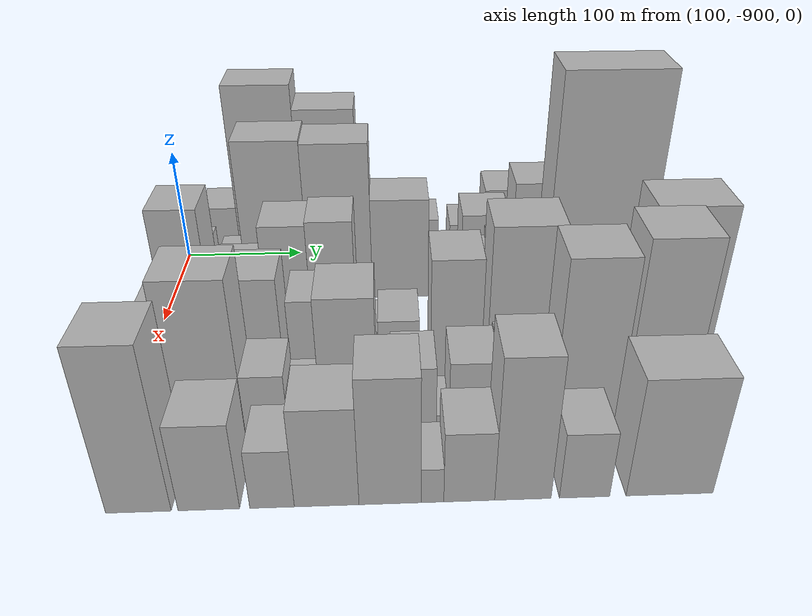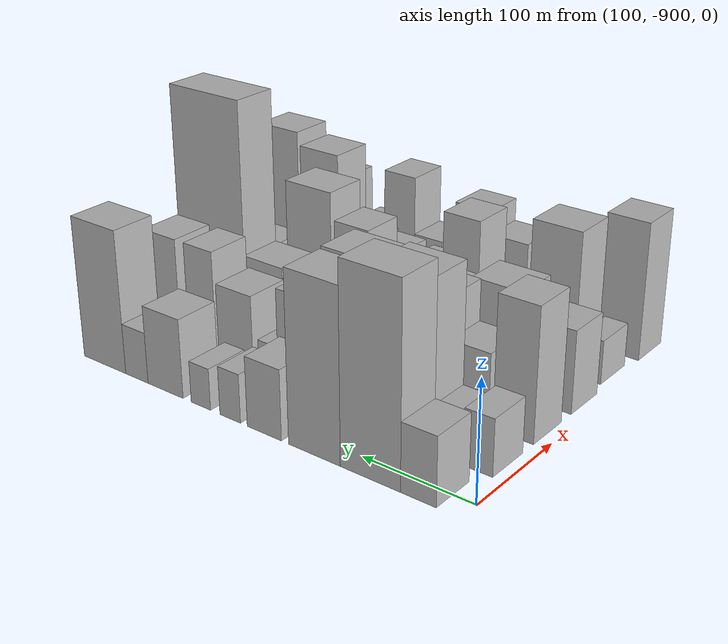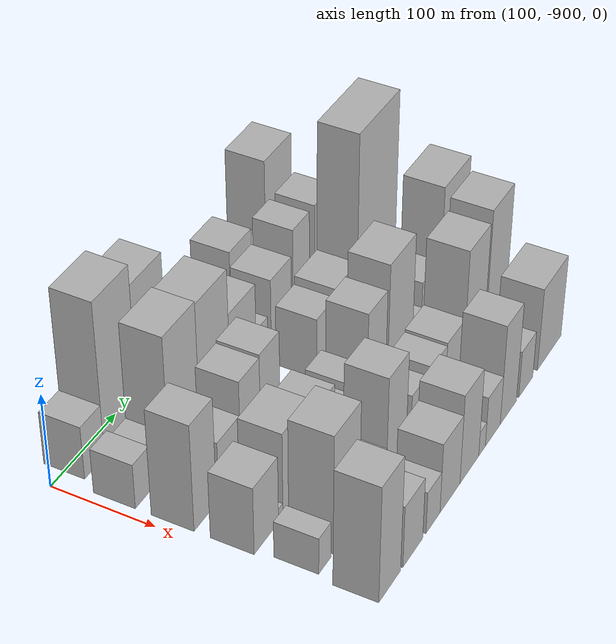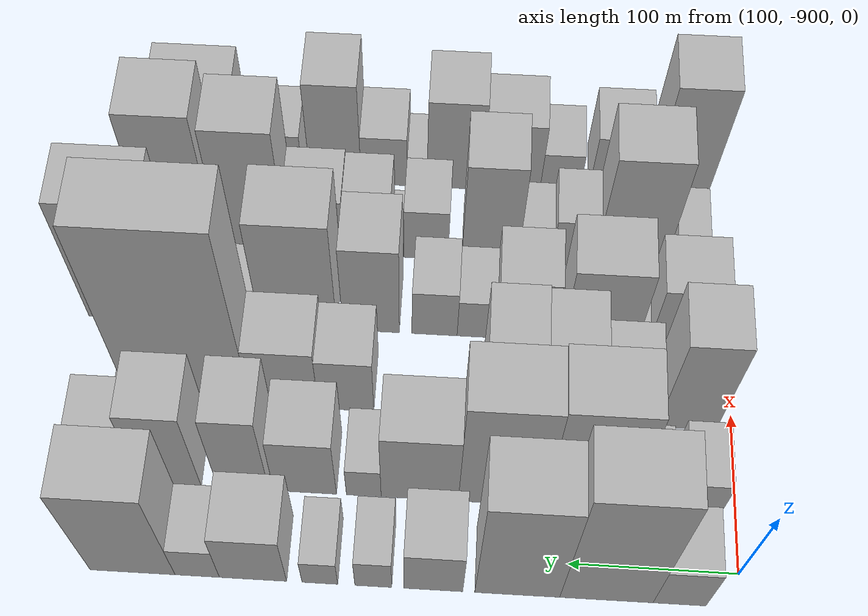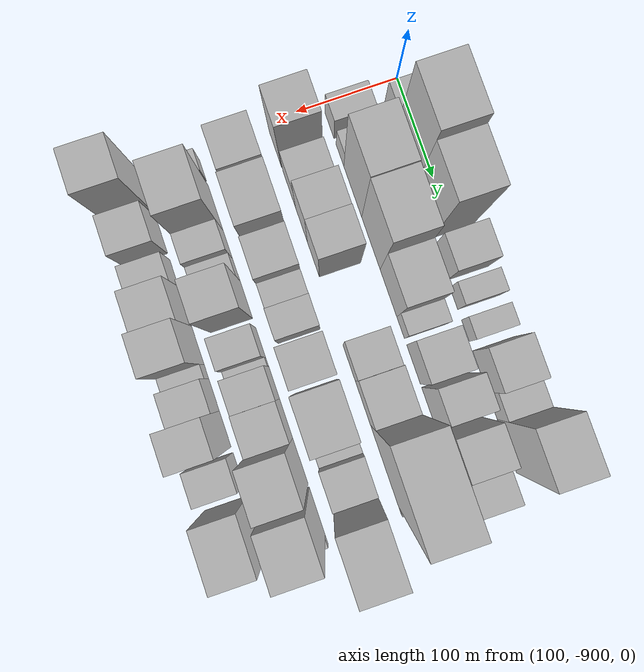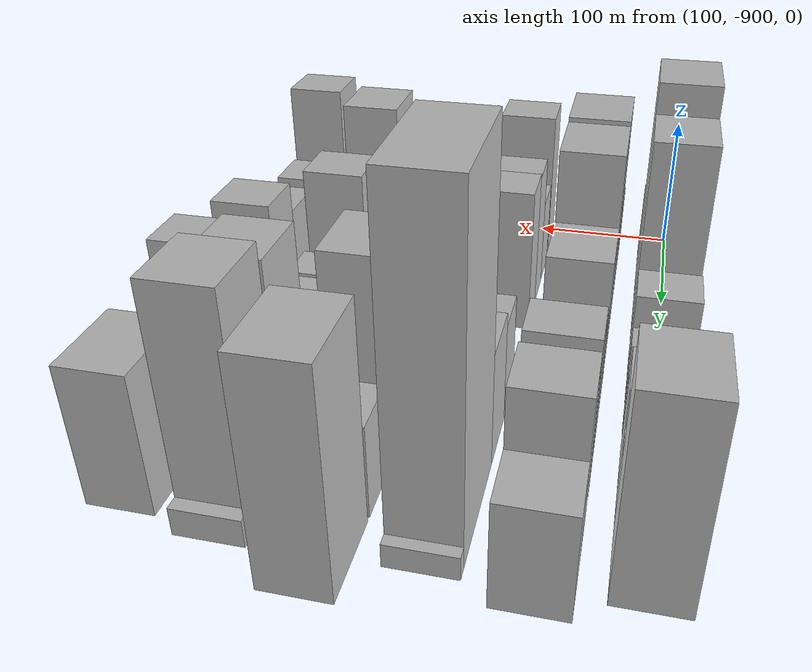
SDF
<sdf version="1.6">
 <world name="default">
  <model name="building_1">
   <static>1</static>
   <pose>100.0000 -864.7257 0 0.000000 0.000000 0.000000</pose>
   <link name="link">
    <pose>0 0 28.50 0 0 0</pose>
    <collision name="collision"><geometry><box><size>40.0000 30.5486 57.0000</size></box></geometry></collision>
    <visual name="visual">
     <cast_shadows>0</cast_shadows>
     <geometry><box><size>40.0000 30.5486 57.0000</size></box></geometry>
     <material>
      <script>
       <uri>model://HANNAS_wall/materials/scripts</uri>
       <uri>model://HANNAS_wall/materials/textures</uri>
       <name>vrc/HANNAS_wall</name>
      </script>
     </material>
    </visual>
   </link>
  </model>
  <model name="building_2">
   <static>1</static>
   <pose>100.0000 -822.4458 0 0.000000 0.000000 0.000000</pose>
   <link name="link">
    <pose>0 0 82.50 0 0 0</pose>
    <collision name="collision"><geometry><box><size>40.0000 54.0111 165.0000</size></box></geometry></collision>
    <visual name="visual">
     <cast_shadows>0</cast_shadows>
     <geometry><box><size>40.0000 54.0111 165.0000</size></box></geometry>
     <material>
      <script>
       <uri>model://HANNAS_wall/materials/scripts</uri>
       <uri>model://HANNAS_wall/materials/textures</uri>
       <name>vrc/HANNAS_wall</name>
      </script>
     </material>
    </visual>
   </link>
  </model>
  <model name="building_3">
   <static>1</static>
   <pose>100.0000 -770.7821 0 0.000000 0.000000 0.000000</pose>
   <link name="link">
    <pose>0 0 72.00 0 0 0</pose>
    <collision name="collision"><geometry><box><size>40.0000 49.3164 144.0000</size></box></geometry></collision>
    <visual name="visual">
     <cast_shadows>0</cast_shadows>
     <geometry><box><size>40.0000 49.3164 144.0000</size></box></geometry>
     <material>
      <script>
       <uri>model://HANNAS_wall/materials/scripts</uri>
       <uri>model://HANNAS_wall/materials/textures</uri>
       <name>vrc/HANNAS_wall</name>
      </script>
     </material>
    </visual>
   </link>
  </model>
  <model name="building_4">
   <static>1</static>
   <pose>100.0000 -721.9472 0 0.000000 0.000000 0.000000</pose>
   <link name="link">
    <pose>0 0 30.00 0 0 0</pose>
    <collision name="collision"><geometry><box><size>40.0000 34.3533 60.0000</size></box></geometry></collision>
    <visual name="visual">
     <cast_shadows>0</cast_shadows>
     <geometry><box><size>40.0000 34.3533 60.0000</size></box></geometry>
     <material>
      <script>
       <uri>model://HANNAS_wall/materials/scripts</uri>
       <uri>model://HANNAS_wall/materials/textures</uri>
       <name>vrc/HANNAS_wall</name>
      </script>
     </material>
    </visual>
   </link>
  </model>
  <model name="building_5">
   <static>1</static>
   <pose>100.0000 -687.0318 0 0.000000 0.000000 0.000000</pose>
   <link name="link">
    <pose>0 0 21.00 0 0 0</pose>
    <collision name="collision"><geometry><box><size>40.0000 21.4775 42.0000</size></box></geometry></collision>
    <visual name="visual">
     <cast_shadows>0</cast_shadows>
     <geometry><box><size>40.0000 21.4775 42.0000</size></box></geometry>
     <material>
      <script>
       <uri>model://HANNAS_wall/materials/scripts</uri>
       <uri>model://HANNAS_wall/materials/textures</uri>
       <name>vrc/HANNAS_wall</name>
      </script>
     </material>
    </visual>
   </link>
  </model>
  <model name="building_6">
   <static>1</static>
   <pose>100.0000 -655.8517 0 0.000000 0.000000 0.000000</pose>
   <link name="link">
    <pose>0 0 18.00 0 0 0</pose>
    <collision name="collision"><geometry><box><size>40.0000 20.8827 36.0000</size></box></geometry></collision>
    <visual name="visual">
     <cast_shadows>0</cast_shadows>
     <geometry><box><size>40.0000 20.8827 36.0000</size></box></geometry>
     <material>
      <script>
       <uri>model://HANNAS_wall/materials/scripts</uri>
       <uri>model://HANNAS_wall/materials/textures</uri>
       <name>vrc/HANNAS_wall</name>
      </script>
     </material>
    </visual>
   </link>
  </model>
  <model name="building_7">
   <static>1</static>
   <pose>100.0000 -616.6868 0 0.000000 0.000000 0.000000</pose>
   <link name="link">
    <pose>0 0 34.50 0 0 0</pose>
    <collision name="collision"><geometry><box><size>40.0000 39.4469 69.0000</size></box></geometry></collision>
    <visual name="visual">
     <cast_shadows>0</cast_shadows>
     <geometry><box><size>40.0000 39.4469 69.0000</size></box></geometry>
     <material>
      <script>
       <uri>model://HANNAS_wall/materials/scripts</uri>
       <uri>model://HANNAS_wall/materials/textures</uri>
       <name>vrc/HANNAS_wall</name>
      </script>
     </material>
    </visual>
   </link>
  </model>
  <model name="building_8">
   <static>1</static>
   <pose>100.0000 -583.9512 0 0.000000 0.000000 0.000000</pose>
   <link name="link">
    <pose>0 0 22.50 0 0 0</pose>
    <collision name="collision"><geometry><box><size>40.0000 26.0243 45.0000</size></box></geometry></collision>
    <visual name="visual">
     <cast_shadows>0</cast_shadows>
     <geometry><box><size>40.0000 26.0243 45.0000</size></box></geometry>
     <material>
      <script>
       <uri>model://HANNAS_wall/materials/scripts</uri>
       <uri>model://HANNAS_wall/materials/textures</uri>
       <name>vrc/HANNAS_wall</name>
      </script>
     </material>
    </visual>
   </link>
  </model>
  <model name="building_9">
   <static>1</static>
   <pose>100.0000 -545.9353 0 0.000000 0.000000 0.000000</pose>
   <link name="link">
    <pose>0 0 63.00 0 0 0</pose>
    <collision name="collision"><geometry><box><size>40.0000 50.0075 126.0000</size></box></geometry></collision>
    <visual name="visual">
     <cast_shadows>0</cast_shadows>
     <geometry><box><size>40.0000 50.0075 126.0000</size></box></geometry>
     <material>
      <script>
       <uri>model://HANNAS_wall/materials/scripts</uri>
       <uri>model://HANNAS_wall/materials/textures</uri>
       <name>vrc/HANNAS_wall</name>
      </script>
     </material>
    </visual>
   </link>
  </model>
  <model name="building_52">
   <static>1</static>
   <pose>155.0000 -877.2453 0 0.000000 0.000000 0.000000</pose>
   <link name="link">
    <pose>0 0 24.00 0 0 0</pose>
    <collision name="collision"><geometry><box><size>40.0000 25.5093 48.0000</size></box></geometry></collision>
    <visual name="visual">
     <cast_shadows>0</cast_shadows>
     <geometry><box><size>40.0000 25.5093 48.0000</size></box></geometry>
     <material>
      <script>
       <uri>model://HANNAS_wall/materials/scripts</uri>
       <uri>model://HANNAS_wall/materials/textures</uri>
       <name>vrc/HANNAS_wall</name>
      </script>
     </material>
    </visual>
   </link>
  </model>
  <model name="building_53">
   <static>1</static>
   <pose>155.0000 -847.4189 0 0.000000 0.000000 0.000000</pose>
   <link name="link">
    <pose>0 0 19.50 0 0 0</pose>
    <collision name="collision"><geometry><box><size>40.0000 22.1435 39.0000</size></box></geometry></collision>
    <visual name="visual">
     <cast_shadows>0</cast_shadows>
     <geometry><box><size>40.0000 22.1435 39.0000</size></box></geometry>
     <material>
      <script>
       <uri>model://HANNAS_wall/materials/scripts</uri>
       <uri>model://HANNAS_wall/materials/textures</uri>
       <name>vrc/HANNAS_wall</name>
      </script>
     </material>
    </visual>
   </link>
  </model>
  <model name="building_54">
   <static>1</static>
   <pose>155.0000 -811.0067 0 0.000000 0.000000 0.000000</pose>
   <link name="link">
    <pose>0 0 70.50 0 0 0</pose>
    <collision name="collision"><geometry><box><size>40.0000 50.6810 141.0000</size></box></geometry></collision>
    <visual name="visual">
     <cast_shadows>0</cast_shadows>
     <geometry><box><size>40.0000 50.6810 141.0000</size></box></geometry>
     <material>
      <script>
       <uri>model://HANNAS_wall/materials/scripts</uri>
       <uri>model://HANNAS_wall/materials/textures</uri>
       <name>vrc/HANNAS_wall</name>
      </script>
     </material>
    </visual>
   </link>
  </model>
  <model name="building_55">
   <static>1</static>
   <pose>155.0000 -759.9130 0 0.000000 0.000000 0.000000</pose>
   <link name="link">
    <pose>0 0 69.00 0 0 0</pose>
    <collision name="collision"><geometry><box><size>40.0000 51.5064 138.0000</size></box></geometry></collision>
    <visual name="visual">
     <cast_shadows>0</cast_shadows>
     <geometry><box><size>40.0000 51.5064 138.0000</size></box></geometry>
     <material>
      <script>
       <uri>model://HANNAS_wall/materials/scripts</uri>
       <uri>model://HANNAS_wall/materials/textures</uri>
       <name>vrc/HANNAS_wall</name>
      </script>
     </material>
    </visual>
   </link>
  </model>
  <model name="building_56">
   <static>1</static>
   <pose>155.0000 -711.0327 0 0.000000 0.000000 0.000000</pose>
   <link name="link">
    <pose>0 0 45.00 0 0 0</pose>
    <collision name="collision"><geometry><box><size>40.0000 46.2541 90.0000</size></box></geometry></collision>
    <visual name="visual">
     <cast_shadows>0</cast_shadows>
     <geometry><box><size>40.0000 46.2541 90.0000</size></box></geometry>
     <material>
      <script>
       <uri>model://HANNAS_wall/materials/scripts</uri>
       <uri>model://HANNAS_wall/materials/textures</uri>
       <name>vrc/HANNAS_wall</name>
      </script>
     </material>
    </visual>
   </link>
  </model>
  <model name="building_57">
   <static>1</static>
   <pose>155.0000 -677.4750 0 0.000000 0.000000 0.000000</pose>
   <link name="link">
    <pose>0 0 19.50 0 0 0</pose>
    <collision name="collision"><geometry><box><size>40.0000 20.8614 39.0000</size></box></geometry></collision>
    <visual name="visual">
     <cast_shadows>0</cast_shadows>
     <geometry><box><size>40.0000 20.8614 39.0000</size></box></geometry>
     <material>
      <script>
       <uri>model://HANNAS_wall/materials/scripts</uri>
       <uri>model://HANNAS_wall/materials/textures</uri>
       <name>vrc/HANNAS_wall</name>
      </script>
     </material>
    </visual>
   </link>
  </model>
  <model name="building_58">
   <static>1</static>
   <pose>155.0000 -642.1965 0 0.000000 0.000000 0.000000</pose>
   <link name="link">
    <pose>0 0 37.50 0 0 0</pose>
    <collision name="collision"><geometry><box><size>40.0000 37.6956 75.0000</size></box></geometry></collision>
    <visual name="visual">
     <cast_shadows>0</cast_shadows>
     <geometry><box><size>40.0000 37.6956 75.0000</size></box></geometry>
     <material>
      <script>
       <uri>model://HANNAS_wall/materials/scripts</uri>
       <uri>model://HANNAS_wall/materials/textures</uri>
       <name>vrc/HANNAS_wall</name>
      </script>
     </material>
    </visual>
   </link>
  </model>
  <model name="building_59">
   <static>1</static>
   <pose>155.0000 -604.8705 0 0.000000 0.000000 0.000000</pose>
   <link name="link">
    <pose>0 0 51.00 0 0 0</pose>
    <collision name="collision"><geometry><box><size>40.0000 30.9563 102.0000</size></box></geometry></collision>
    <visual name="visual">
     <cast_shadows>0</cast_shadows>
     <geometry><box><size>40.0000 30.9563 102.0000</size></box></geometry>
     <material>
      <script>
       <uri>model://HANNAS_wall/materials/scripts</uri>
       <uri>model://HANNAS_wall/materials/textures</uri>
       <name>vrc/HANNAS_wall</name>
      </script>
     </material>
    </visual>
   </link>
  </model>
  <model name="building_60">
   <static>1</static>
   <pose>155.0000 -561.1471 0 0.000000 0.000000 0.000000</pose>
   <link name="link">
    <pose>0 0 51.00 0 0 0</pose>
    <collision name="collision"><geometry><box><size>40.0000 36.4905 102.0000</size></box></geometry></collision>
    <visual name="visual">
     <cast_shadows>0</cast_shadows>
     <geometry><box><size>40.0000 36.4905 102.0000</size></box></geometry>
     <material>
      <script>
       <uri>model://HANNAS_wall/materials/scripts</uri>
       <uri>model://HANNAS_wall/materials/textures</uri>
       <name>vrc/HANNAS_wall</name>
      </script>
     </material>
    </visual>
   </link>
  </model>
  <model name="building_61">
   <static>1</static>
   <pose>155.0000 -525.0356 0 0.000000 0.000000 0.000000</pose>
   <link name="link">
    <pose>0 0 33.00 0 0 0</pose>
    <collision name="collision"><geometry><box><size>40.0000 35.7326 66.0000</size></box></geometry></collision>
    <visual name="visual">
     <cast_shadows>0</cast_shadows>
     <geometry><box><size>40.0000 35.7326 66.0000</size></box></geometry>
     <material>
      <script>
       <uri>model://HANNAS_wall/materials/scripts</uri>
       <uri>model://HANNAS_wall/materials/textures</uri>
       <name>vrc/HANNAS_wall</name>
      </script>
     </material>
    </visual>
   </link>
  </model>
  <model name="building_102">
   <static>1</static>
   <pose>210.0000 -872.0257 0 0.000000 0.000000 0.000000</pose>
   <link name="link">
    <pose>0 0 57.00 0 0 0</pose>
    <collision name="collision"><geometry><box><size>40.0000 35.9486 114.0000</size></box></geometry></collision>
    <visual name="visual">
     <cast_shadows>0</cast_shadows>
     <geometry><box><size>40.0000 35.9486 114.0000</size></box></geometry>
     <material>
      <script>
       <uri>model://HANNAS_wall/materials/scripts</uri>
       <uri>model://HANNAS_wall/materials/textures</uri>
       <name>vrc/HANNAS_wall</name>
      </script>
     </material>
    </visual>
   </link>
  </model>
  <model name="building_103">
   <static>1</static>
   <pose>210.0000 -831.6804 0 0.000000 0.000000 0.000000</pose>
   <link name="link">
    <pose>0 0 31.50 0 0 0</pose>
    <collision name="collision"><geometry><box><size>40.0000 36.7421 63.0000</size></box></geometry></collision>
    <visual name="visual">
     <cast_shadows>0</cast_shadows>
     <geometry><box><size>40.0000 36.7421 63.0000</size></box></geometry>
     <material>
      <script>
       <uri>model://HANNAS_wall/materials/scripts</uri>
       <uri>model://HANNAS_wall/materials/textures</uri>
       <name>vrc/HANNAS_wall</name>
      </script>
     </material>
    </visual>
   </link>
  </model>
  <model name="building_104">
   <static>1</static>
   <pose>210.0000 -796.4496 0 0.000000 0.000000 0.000000</pose>
   <link name="link">
    <pose>0 0 49.50 0 0 0</pose>
    <collision name="collision"><geometry><box><size>40.0000 33.7194 99.0000</size></box></geometry></collision>
    <visual name="visual">
     <cast_shadows>0</cast_shadows>
     <geometry><box><size>40.0000 33.7194 99.0000</size></box></geometry>
     <material>
      <script>
       <uri>model://HANNAS_wall/materials/scripts</uri>
       <uri>model://HANNAS_wall/materials/textures</uri>
       <name>vrc/HANNAS_wall</name>
      </script>
     </material>
    </visual>
   </link>
  </model>
  <model name="building_105">
   <static>1</static>
   <pose>210.0000 -762.6803 0 0.000000 0.000000 0.000000</pose>
   <link name="link">
    <pose>0 0 51.00 0 0 0</pose>
    <collision name="collision"><geometry><box><size>40.0000 33.8191 102.0000</size></box></geometry></collision>
    <visual name="visual">
     <cast_shadows>0</cast_shadows>
     <geometry><box><size>40.0000 33.8191 102.0000</size></box></geometry>
     <material>
      <script>
       <uri>model://HANNAS_wall/materials/scripts</uri>
       <uri>model://HANNAS_wall/materials/textures</uri>
       <name>vrc/HANNAS_wall</name>
      </script>
     </material>
    </visual>
   </link>
  </model>
  <model name="building_106">
   <static>1</static>
   <pose>210.0000 -662.5745 0 0.000000 0.000000 0.000000</pose>
   <link name="link">
    <pose>0 0 33.00 0 0 0</pose>
    <collision name="collision"><geometry><box><size>40.0000 34.1308 66.0000</size></box></geometry></collision>
    <visual name="visual">
     <cast_shadows>0</cast_shadows>
     <geometry><box><size>40.0000 34.1308 66.0000</size></box></geometry>
     <material>
      <script>
       <uri>model://HANNAS_wall/materials/scripts</uri>
       <uri>model://HANNAS_wall/materials/textures</uri>
       <name>vrc/HANNAS_wall</name>
      </script>
     </material>
    </visual>
   </link>
  </model>
  <model name="building_107">
   <static>1</static>
   <pose>210.0000 -624.4218 0 0.000000 0.000000 0.000000</pose>
   <link name="link">
    <pose>0 0 37.50 0 0 0</pose>
    <collision name="collision"><geometry><box><size>40.0000 42.1746 75.0000</size></box></geometry></collision>
    <visual name="visual">
     <cast_shadows>0</cast_shadows>
     <geometry><box><size>40.0000 42.1746 75.0000</size></box></geometry>
     <material>
      <script>
       <uri>model://HANNAS_wall/materials/scripts</uri>
       <uri>model://HANNAS_wall/materials/textures</uri>
       <name>vrc/HANNAS_wall</name>
      </script>
     </material>
    </visual>
   </link>
  </model>
  <model name="building_108">
   <static>1</static>
   <pose>210.0000 -565.2541 0 0.000000 0.000000 0.000000</pose>
   <link name="link">
    <pose>0 0 105.00 0 0 0</pose>
    <collision name="collision"><geometry><box><size>40.0000 76.1609 210.0000</size></box></geometry></collision>
    <visual name="visual">
     <cast_shadows>0</cast_shadows>
     <geometry><box><size>40.0000 76.1609 210.0000</size></box></geometry>
     <material>
      <script>
       <uri>model://HANNAS_wall/materials/scripts</uri>
       <uri>model://HANNAS_wall/materials/textures</uri>
       <name>vrc/HANNAS_wall</name>
      </script>
     </material>
    </visual>
   </link>
  </model>
  <model name="building_109">
   <static>1</static>
   <pose>210.0000 -523.6101 0 0.000000 0.000000 0.000000</pose>
   <link name="link">
    <pose>0 0 7.50 0 0 0</pose>
    <collision name="collision"><geometry><box><size>40.0000 7.1270 15.0000</size></box></geometry></collision>
    <visual name="visual">
     <cast_shadows>0</cast_shadows>
     <geometry><box><size>40.0000 7.1270 15.0000</size></box></geometry>
     <material>
      <script>
       <uri>model://HANNAS_wall/materials/scripts</uri>
       <uri>model://HANNAS_wall/materials/textures</uri>
       <name>vrc/HANNAS_wall</name>
      </script>
     </material>
    </visual>
   </link>
  </model>
  <model name="building_154">
   <static>1</static>
   <pose>265.0000 -869.8966 0 0.000000 0.000000 0.000000</pose>
   <link name="link">
    <pose>0 0 36.00 0 0 0</pose>
    <collision name="collision"><geometry><box><size>40.0000 40.2068 72.0000</size></box></geometry></collision>
    <visual name="visual">
     <cast_shadows>0</cast_shadows>
     <geometry><box><size>40.0000 40.2068 72.0000</size></box></geometry>
     <material>
      <script>
       <uri>model://HANNAS_wall/materials/scripts</uri>
       <uri>model://HANNAS_wall/materials/textures</uri>
       <name>vrc/HANNAS_wall</name>
      </script>
     </material>
    </visual>
   </link>
  </model>
  <model name="building_155">
   <static>1</static>
   <pose>265.0000 -846.0512 0 0.000000 0.000000 0.000000</pose>
   <link name="link">
    <pose>0 0 7.50 0 0 0</pose>
    <collision name="collision"><geometry><box><size>40.0000 7.4838 15.0000</size></box></geometry></collision>
    <visual name="visual">
     <cast_shadows>0</cast_shadows>
     <geometry><box><size>40.0000 7.4838 15.0000</size></box></geometry>
     <material>
      <script>
       <uri>model://HANNAS_wall/materials/scripts</uri>
       <uri>model://HANNAS_wall/materials/textures</uri>
       <name>vrc/HANNAS_wall</name>
      </script>
     </material>
    </visual>
   </link>
  </model>
  <model name="building_156">
   <static>1</static>
   <pose>265.0000 -818.6921 0 0.000000 0.000000 0.000000</pose>
   <link name="link">
    <pose>0 0 45.00 0 0 0</pose>
    <collision name="collision"><geometry><box><size>40.0000 47.2345 90.0000</size></box></geometry></collision>
    <visual name="visual">
     <cast_shadows>0</cast_shadows>
     <geometry><box><size>40.0000 47.2345 90.0000</size></box></geometry>
     <material>
      <script>
       <uri>model://HANNAS_wall/materials/scripts</uri>
       <uri>model://HANNAS_wall/materials/textures</uri>
       <name>vrc/HANNAS_wall</name>
      </script>
     </material>
    </visual>
   </link>
  </model>
  <model name="building_157">
   <static>1</static>
   <pose>265.0000 -771.1643 0 0.000000 0.000000 0.000000</pose>
   <link name="link">
    <pose>0 0 36.00 0 0 0</pose>
    <collision name="collision"><geometry><box><size>40.0000 37.8212 72.0000</size></box></geometry></collision>
    <visual name="visual">
     <cast_shadows>0</cast_shadows>
     <geometry><box><size>40.0000 37.8212 72.0000</size></box></geometry>
     <material>
      <script>
       <uri>model://HANNAS_wall/materials/scripts</uri>
       <uri>model://HANNAS_wall/materials/textures</uri>
       <name>vrc/HANNAS_wall</name>
      </script>
     </material>
    </visual>
   </link>
  </model>
  <model name="building_158">
   <static>1</static>
   <pose>265.0000 -740.4808 0 0.000000 0.000000 0.000000</pose>
   <link name="link">
    <pose>0 0 22.50 0 0 0</pose>
    <collision name="collision"><geometry><box><size>40.0000 23.5458 45.0000</size></box></geometry></collision>
    <visual name="visual">
     <cast_shadows>0</cast_shadows>
     <geometry><box><size>40.0000 23.5458 45.0000</size></box></geometry>
     <material>
      <script>
       <uri>model://HANNAS_wall/materials/scripts</uri>
       <uri>model://HANNAS_wall/materials/textures</uri>
       <name>vrc/HANNAS_wall</name>
      </script>
     </material>
    </visual>
   </link>
  </model>
  <model name="building_159">
   <static>1</static>
   <pose>265.0000 -714.3545 0 0.000000 0.000000 0.000000</pose>
   <link name="link">
    <pose>0 0 27.00 0 0 0</pose>
    <collision name="collision"><geometry><box><size>40.0000 28.7067 54.0000</size></box></geometry></collision>
    <visual name="visual">
     <cast_shadows>0</cast_shadows>
     <geometry><box><size>40.0000 28.7067 54.0000</size></box></geometry>
     <material>
      <script>
       <uri>model://HANNAS_wall/materials/scripts</uri>
       <uri>model://HANNAS_wall/materials/textures</uri>
       <name>vrc/HANNAS_wall</name>
      </script>
     </material>
    </visual>
   </link>
  </model>
  <model name="building_160">
   <static>1</static>
   <pose>265.0000 -674.1225 0 0.000000 0.000000 0.000000</pose>
   <link name="link">
    <pose>0 0 51.00 0 0 0</pose>
    <collision name="collision"><geometry><box><size>40.0000 35.7574 102.0000</size></box></geometry></collision>
    <visual name="visual">
     <cast_shadows>0</cast_shadows>
     <geometry><box><size>40.0000 35.7574 102.0000</size></box></geometry>
     <material>
      <script>
       <uri>model://HANNAS_wall/materials/scripts</uri>
       <uri>model://HANNAS_wall/materials/textures</uri>
       <name>vrc/HANNAS_wall</name>
      </script>
     </material>
    </visual>
   </link>
  </model>
  <model name="building_161">
   <static>1</static>
   <pose>265.0000 -627.6729 0 0.000000 0.000000 0.000000</pose>
   <link name="link">
    <pose>0 0 63.00 0 0 0</pose>
    <collision name="collision"><geometry><box><size>40.0000 49.1418 126.0000</size></box></geometry></collision>
    <visual name="visual">
     <cast_shadows>0</cast_shadows>
     <geometry><box><size>40.0000 49.1418 126.0000</size></box></geometry>
     <material>
      <script>
       <uri>model://HANNAS_wall/materials/scripts</uri>
       <uri>model://HANNAS_wall/materials/textures</uri>
       <name>vrc/HANNAS_wall</name>
      </script>
     </material>
    </visual>
   </link>
  </model>
  <model name="building_162">
   <static>1</static>
   <pose>265.0000 -594.2826 0 0.000000 0.000000 0.000000</pose>
   <link name="link">
    <pose>0 0 16.50 0 0 0</pose>
    <collision name="collision"><geometry><box><size>40.0000 17.6388 33.0000</size></box></geometry></collision>
    <visual name="visual">
     <cast_shadows>0</cast_shadows>
     <geometry><box><size>40.0000 17.6388 33.0000</size></box></geometry>
     <material>
      <script>
       <uri>model://HANNAS_wall/materials/scripts</uri>
       <uri>model://HANNAS_wall/materials/textures</uri>
       <name>vrc/HANNAS_wall</name>
      </script>
     </material>
    </visual>
   </link>
  </model>
  <model name="building_163">
   <static>1</static>
   <pose>265.0000 -567.7418 0 0.000000 0.000000 0.000000</pose>
   <link name="link">
    <pose>0 0 30.00 0 0 0</pose>
    <collision name="collision"><geometry><box><size>40.0000 35.4427 60.0000</size></box></geometry></collision>
    <visual name="visual">
     <cast_shadows>0</cast_shadows>
     <geometry><box><size>40.0000 35.4427 60.0000</size></box></geometry>
     <material>
      <script>
       <uri>model://HANNAS_wall/materials/scripts</uri>
       <uri>model://HANNAS_wall/materials/textures</uri>
       <name>vrc/HANNAS_wall</name>
      </script>
     </material>
    </visual>
   </link>
  </model>
  <model name="building_164">
   <static>1</static>
   <pose>265.0000 -520.1163 0 0.000000 0.000000 0.000000</pose>
   <link name="link">
    <pose>0 0 69.00 0 0 0</pose>
    <collision name="collision"><geometry><box><size>40.0000 53.8084 138.0000</size></box></geometry></collision>
    <visual name="visual">
     <cast_shadows>0</cast_shadows>
     <geometry><box><size>40.0000 53.8084 138.0000</size></box></geometry>
     <material>
      <script>
       <uri>model://HANNAS_wall/materials/scripts</uri>
       <uri>model://HANNAS_wall/materials/textures</uri>
       <name>vrc/HANNAS_wall</name>
      </script>
     </material>
    </visual>
   </link>
  </model>
  <model name="building_201">
   <static>1</static>
   <pose>320.0000 -874.5870 0 0.000000 0.000000 0.000000</pose>
   <link name="link">
    <pose>0 0 19.50 0 0 0</pose>
    <collision name="collision"><geometry><box><size>40.0000 20.8260 39.0000</size></box></geometry></collision>
    <visual name="visual">
     <cast_shadows>0</cast_shadows>
     <geometry><box><size>40.0000 20.8260 39.0000</size></box></geometry>
     <material>
      <script>
       <uri>model://HANNAS_wall/materials/scripts</uri>
       <uri>model://HANNAS_wall/materials/textures</uri>
       <name>vrc/HANNAS_wall</name>
      </script>
     </material>
    </visual>
   </link>
  </model>
  <model name="building_202">
   <static>1</static>
   <pose>320.0000 -837.5990 0 0.000000 0.000000 0.000000</pose>
   <link name="link">
    <pose>0 0 63.00 0 0 0</pose>
    <collision name="collision"><geometry><box><size>40.0000 45.1499 126.0000</size></box></geometry></collision>
    <visual name="visual">
     <cast_shadows>0</cast_shadows>
     <geometry><box><size>40.0000 45.1499 126.0000</size></box></geometry>
     <material>
      <script>
       <uri>model://HANNAS_wall/materials/scripts</uri>
       <uri>model://HANNAS_wall/materials/textures</uri>
       <name>vrc/HANNAS_wall</name>
      </script>
     </material>
    </visual>
   </link>
  </model>
  <model name="building_203">
   <static>1</static>
   <pose>320.0000 -801.2038 0 0.000000 0.000000 0.000000</pose>
   <link name="link">
    <pose>0 0 27.00 0 0 0</pose>
    <collision name="collision"><geometry><box><size>40.0000 27.6406 54.0000</size></box></geometry></collision>
    <visual name="visual">
     <cast_shadows>0</cast_shadows>
     <geometry><box><size>40.0000 27.6406 54.0000</size></box></geometry>
     <material>
      <script>
       <uri>model://HANNAS_wall/materials/scripts</uri>
       <uri>model://HANNAS_wall/materials/textures</uri>
       <name>vrc/HANNAS_wall</name>
      </script>
     </material>
    </visual>
   </link>
  </model>
  <model name="building_204">
   <static>1</static>
   <pose>320.0000 -776.6204 0 0.000000 0.000000 0.000000</pose>
   <link name="link">
    <pose>0 0 18.00 0 0 0</pose>
    <collision name="collision"><geometry><box><size>40.0000 21.5260 36.0000</size></box></geometry></collision>
    <visual name="visual">
     <cast_shadows>0</cast_shadows>
     <geometry><box><size>40.0000 21.5260 36.0000</size></box></geometry>
     <material>
      <script>
       <uri>model://HANNAS_wall/materials/scripts</uri>
       <uri>model://HANNAS_wall/materials/textures</uri>
       <name>vrc/HANNAS_wall</name>
      </script>
     </material>
    </visual>
   </link>
  </model>
  <model name="building_205">
   <static>1</static>
   <pose>320.0000 -747.6105 0 0.000000 0.000000 0.000000</pose>
   <link name="link">
    <pose>0 0 55.50 0 0 0</pose>
    <collision name="collision"><geometry><box><size>40.0000 36.4938 111.0000</size></box></geometry></collision>
    <visual name="visual">
     <cast_shadows>0</cast_shadows>
     <geometry><box><size>40.0000 36.4938 111.0000</size></box></geometry>
     <material>
      <script>
       <uri>model://HANNAS_wall/materials/scripts</uri>
       <uri>model://HANNAS_wall/materials/textures</uri>
       <name>vrc/HANNAS_wall</name>
      </script>
     </material>
    </visual>
   </link>
  </model>
  <model name="building_206">
   <static>1</static>
   <pose>320.0000 -705.8832 0 0.000000 0.000000 0.000000</pose>
   <link name="link">
    <pose>0 0 28.50 0 0 0</pose>
    <collision name="collision"><geometry><box><size>40.0000 28.9608 57.0000</size></box></geometry></collision>
    <visual name="visual">
     <cast_shadows>0</cast_shadows>
     <geometry><box><size>40.0000 28.9608 57.0000</size></box></geometry>
     <material>
      <script>
       <uri>model://HANNAS_wall/materials/scripts</uri>
       <uri>model://HANNAS_wall/materials/textures</uri>
       <name>vrc/HANNAS_wall</name>
      </script>
     </material>
    </visual>
   </link>
  </model>
  <model name="building_207">
   <static>1</static>
   <pose>320.0000 -687.2575 0 0.000000 0.000000 0.000000</pose>
   <link name="link">
    <pose>0 0 9.00 0 0 0</pose>
    <collision name="collision"><geometry><box><size>40.0000 8.2906 18.0000</size></box></geometry></collision>
    <visual name="visual">
     <cast_shadows>0</cast_shadows>
     <geometry><box><size>40.0000 8.2906 18.0000</size></box></geometry>
     <material>
      <script>
       <uri>model://HANNAS_wall/materials/scripts</uri>
       <uri>model://HANNAS_wall/materials/textures</uri>
       <name>vrc/HANNAS_wall</name>
      </script>
     </material>
    </visual>
   </link>
  </model>
  <model name="building_208">
   <static>1</static>
   <pose>320.0000 -667.7452 0 0.000000 0.000000 0.000000</pose>
   <link name="link">
    <pose>0 0 30.00 0 0 0</pose>
    <collision name="collision"><geometry><box><size>40.0000 30.7339 60.0000</size></box></geometry></collision>
    <visual name="visual">
     <cast_shadows>0</cast_shadows>
     <geometry><box><size>40.0000 30.7339 60.0000</size></box></geometry>
     <material>
      <script>
       <uri>model://HANNAS_wall/materials/scripts</uri>
       <uri>model://HANNAS_wall/materials/textures</uri>
       <name>vrc/HANNAS_wall</name>
      </script>
     </material>
    </visual>
   </link>
  </model>
  <model name="building_209">
   <static>1</static>
   <pose>320.0000 -633.8303 0 0.000000 0.000000 0.000000</pose>
   <link name="link">
    <pose>0 0 31.50 0 0 0</pose>
    <collision name="collision"><geometry><box><size>40.0000 37.0960 63.0000</size></box></geometry></collision>
    <visual name="visual">
     <cast_shadows>0</cast_shadows>
     <geometry><box><size>40.0000 37.0960 63.0000</size></box></geometry>
     <material>
      <script>
       <uri>model://HANNAS_wall/materials/scripts</uri>
       <uri>model://HANNAS_wall/materials/textures</uri>
       <name>vrc/HANNAS_wall</name>
      </script>
     </material>
    </visual>
   </link>
  </model>
  <model name="building_210">
   <static>1</static>
   <pose>320.0000 -593.8156 0 0.000000 0.000000 0.000000</pose>
   <link name="link">
    <pose>0 0 67.50 0 0 0</pose>
    <collision name="collision"><geometry><box><size>40.0000 42.9334 135.0000</size></box></geometry></collision>
    <visual name="visual">
     <cast_shadows>0</cast_shadows>
     <geometry><box><size>40.0000 42.9334 135.0000</size></box></geometry>
     <material>
      <script>
       <uri>model://HANNAS_wall/materials/scripts</uri>
       <uri>model://HANNAS_wall/materials/textures</uri>
       <name>vrc/HANNAS_wall</name>
      </script>
     </material>
    </visual>
   </link>
  </model>
  <model name="building_211">
   <static>1</static>
   <pose>320.0000 -547.2403 0 0.000000 0.000000 0.000000</pose>
   <link name="link">
    <pose>0 0 73.50 0 0 0</pose>
    <collision name="collision"><geometry><box><size>40.0000 44.2172 147.0000</size></box></geometry></collision>
    <visual name="visual">
     <cast_shadows>0</cast_shadows>
     <geometry><box><size>40.0000 44.2172 147.0000</size></box></geometry>
     <material>
      <script>
       <uri>model://HANNAS_wall/materials/scripts</uri>
       <uri>model://HANNAS_wall/materials/textures</uri>
       <name>vrc/HANNAS_wall</name>
      </script>
     </material>
    </visual>
   </link>
  </model>
  <model name="building_212">
   <static>1</static>
   <pose>320.0000 -520.9393 0 0.000000 0.000000 0.000000</pose>
   <link name="link">
    <pose>0 0 9.00 0 0 0</pose>
    <collision name="collision"><geometry><box><size>40.0000 8.3847 18.0000</size></box></geometry></collision>
    <visual name="visual">
     <cast_shadows>0</cast_shadows>
     <geometry><box><size>40.0000 8.3847 18.0000</size></box></geometry>
     <material>
      <script>
       <uri>model://HANNAS_wall/materials/scripts</uri>
       <uri>model://HANNAS_wall/materials/textures</uri>
       <name>vrc/HANNAS_wall</name>
      </script>
     </material>
    </visual>
   </link>
  </model>
  <model name="building_252">
   <static>1</static>
   <pose>375.0000 -870.8621 0 0.000000 0.000000 0.000000</pose>
   <link name="link">
    <pose>0 0 61.50 0 0 0</pose>
    <collision name="collision"><geometry><box><size>40.0000 38.2757 123.0000</size></box></geometry></collision>
    <visual name="visual">
     <cast_shadows>0</cast_shadows>
     <geometry><box><size>40.0000 38.2757 123.0000</size></box></geometry>
     <material>
      <script>
       <uri>model://HANNAS_wall/materials/scripts</uri>
       <uri>model://HANNAS_wall/materials/textures</uri>
       <name>vrc/HANNAS_wall</name>
      </script>
     </material>
    </visual>
   </link>
  </model>
  <model name="building_253">
   <static>1</static>
   <pose>375.0000 -829.6356 0 0.000000 0.000000 0.000000</pose>
   <link name="link">
    <pose>0 0 33.00 0 0 0</pose>
    <collision name="collision"><geometry><box><size>40.0000 36.1774 66.0000</size></box></geometry></collision>
    <visual name="visual">
     <cast_shadows>0</cast_shadows>
     <geometry><box><size>40.0000 36.1774 66.0000</size></box></geometry>
     <material>
      <script>
       <uri>model://HANNAS_wall/materials/scripts</uri>
       <uri>model://HANNAS_wall/materials/textures</uri>
       <name>vrc/HANNAS_wall</name>
      </script>
     </material>
    </visual>
   </link>
  </model>
  <model name="building_254">
   <static>1</static>
   <pose>375.0000 -792.3854 0 0.000000 0.000000 0.000000</pose>
   <link name="link">
    <pose>0 0 22.50 0 0 0</pose>
    <collision name="collision"><geometry><box><size>40.0000 26.3230 45.0000</size></box></geometry></collision>
    <visual name="visual">
     <cast_shadows>0</cast_shadows>
     <geometry><box><size>40.0000 26.3230 45.0000</size></box></geometry>
     <material>
      <script>
       <uri>model://HANNAS_wall/materials/scripts</uri>
       <uri>model://HANNAS_wall/materials/textures</uri>
       <name>vrc/HANNAS_wall</name>
      </script>
     </material>
    </visual>
   </link>
  </model>
  <model name="building_255">
   <static>1</static>
   <pose>375.0000 -760.0310 0 0.000000 0.000000 0.000000</pose>
   <link name="link">
    <pose>0 0 37.50 0 0 0</pose>
    <collision name="collision"><geometry><box><size>40.0000 38.3857 75.0000</size></box></geometry></collision>
    <visual name="visual">
     <cast_shadows>0</cast_shadows>
     <geometry><box><size>40.0000 38.3857 75.0000</size></box></geometry>
     <material>
      <script>
       <uri>model://HANNAS_wall/materials/scripts</uri>
       <uri>model://HANNAS_wall/materials/textures</uri>
       <name>vrc/HANNAS_wall</name>
      </script>
     </material>
    </visual>
   </link>
  </model>
  <model name="building_256">
   <static>1</static>
   <pose>375.0000 -722.2607 0 0.000000 0.000000 0.000000</pose>
   <link name="link">
    <pose>0 0 48.00 0 0 0</pose>
    <collision name="collision"><geometry><box><size>40.0000 37.1551 96.0000</size></box></geometry></collision>
    <visual name="visual">
     <cast_shadows>0</cast_shadows>
     <geometry><box><size>40.0000 37.1551 96.0000</size></box></geometry>
     <material>
      <script>
       <uri>model://HANNAS_wall/materials/scripts</uri>
       <uri>model://HANNAS_wall/materials/textures</uri>
       <name>vrc/HANNAS_wall</name>
      </script>
     </material>
    </visual>
   </link>
  </model>
  <model name="building_257">
   <static>1</static>
   <pose>375.0000 -696.9505 0 0.000000 0.000000 0.000000</pose>
   <link name="link">
    <pose>0 0 13.50 0 0 0</pose>
    <collision name="collision"><geometry><box><size>40.0000 13.4652 27.0000</size></box></geometry></collision>
    <visual name="visual">
     <cast_shadows>0</cast_shadows>
     <geometry><box><size>40.0000 13.4652 27.0000</size></box></geometry>
     <material>
      <script>
       <uri>model://HANNAS_wall/materials/scripts</uri>
       <uri>model://HANNAS_wall/materials/textures</uri>
       <name>vrc/HANNAS_wall</name>
      </script>
     </material>
    </visual>
   </link>
  </model>
  <model name="building_258">
   <static>1</static>
   <pose>375.0000 -674.9305 0 0.000000 0.000000 0.000000</pose>
   <link name="link">
    <pose>0 0 27.00 0 0 0</pose>
    <collision name="collision"><geometry><box><size>40.0000 30.5749 54.0000</size></box></geometry></collision>
    <visual name="visual">
     <cast_shadows>0</cast_shadows>
     <geometry><box><size>40.0000 30.5749 54.0000</size></box></geometry>
     <material>
      <script>
       <uri>model://HANNAS_wall/materials/scripts</uri>
       <uri>model://HANNAS_wall/materials/textures</uri>
       <name>vrc/HANNAS_wall</name>
      </script>
     </material>
    </visual>
   </link>
  </model>
  <model name="building_259">
   <static>1</static>
   <pose>375.0000 -642.5731 0 0.000000 0.000000 0.000000</pose>
   <link name="link">
    <pose>0 0 54.00 0 0 0</pose>
    <collision name="collision"><geometry><box><size>40.0000 34.1399 108.0000</size></box></geometry></collision>
    <visual name="visual">
     <cast_shadows>0</cast_shadows>
     <geometry><box><size>40.0000 34.1399 108.0000</size></box></geometry>
     <material>
      <script>
       <uri>model://HANNAS_wall/materials/scripts</uri>
       <uri>model://HANNAS_wall/materials/textures</uri>
       <name>vrc/HANNAS_wall</name>
      </script>
     </material>
    </visual>
   </link>
  </model>
  <model name="building_260">
   <static>1</static>
   <pose>375.0000 -605.2171 0 0.000000 0.000000 0.000000</pose>
   <link name="link">
    <pose>0 0 25.50 0 0 0</pose>
    <collision name="collision"><geometry><box><size>40.0000 30.5722 51.0000</size></box></geometry></collision>
    <visual name="visual">
     <cast_shadows>0</cast_shadows>
     <geometry><box><size>40.0000 30.5722 51.0000</size></box></geometry>
     <material>
      <script>
       <uri>model://HANNAS_wall/materials/scripts</uri>
       <uri>model://HANNAS_wall/materials/textures</uri>
       <name>vrc/HANNAS_wall</name>
      </script>
     </material>
    </visual>
   </link>
  </model>
  <model name="building_261">
   <static>1</static>
   <pose>375.0000 -553.3310 0 0.000000 0.000000 0.000000</pose>
   <link name="link">
    <pose>0 0 45.00 0 0 0</pose>
    <collision name="collision"><geometry><box><size>40.0000 53.2001 90.0000</size></box></geometry></collision>
    <visual name="visual">
     <cast_shadows>0</cast_shadows>
     <geometry><box><size>40.0000 53.2001 90.0000</size></box></geometry>
     <material>
      <script>
       <uri>model://HANNAS_wall/materials/scripts</uri>
       <uri>model://HANNAS_wall/materials/textures</uri>
       <name>vrc/HANNAS_wall</name>
      </script>
     </material>
    </visual>
   </link>
  </model>
 </world>
</sdf>
